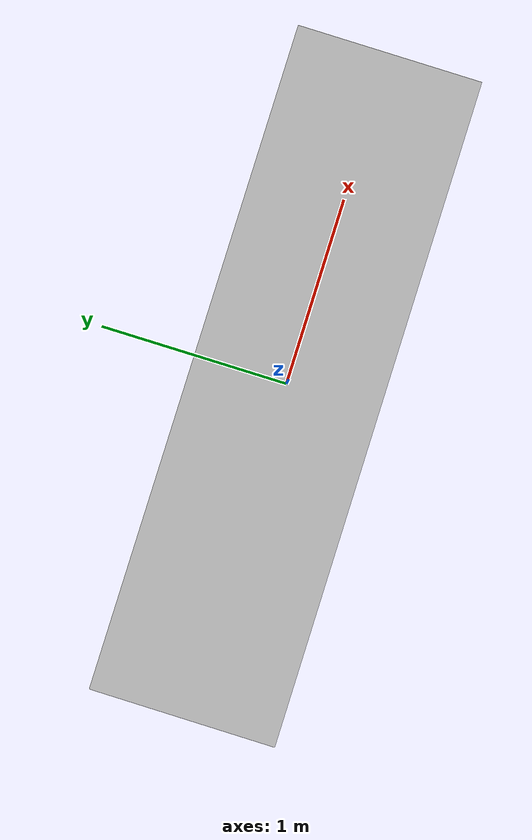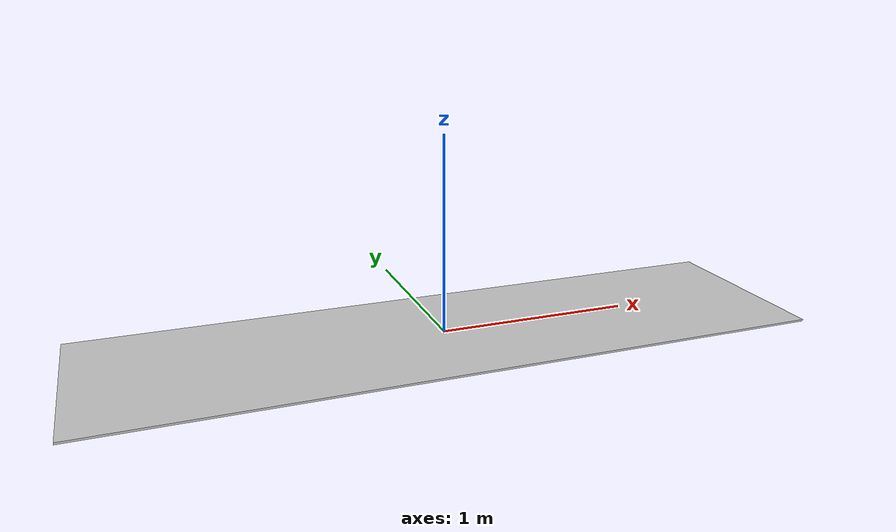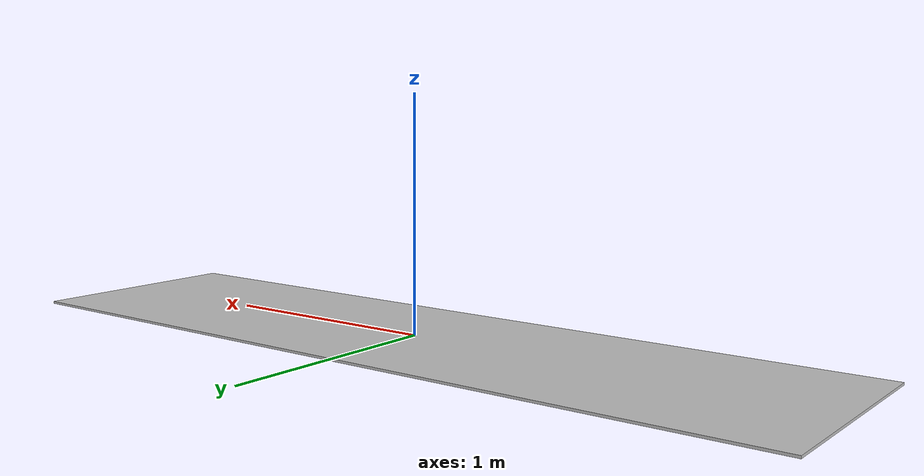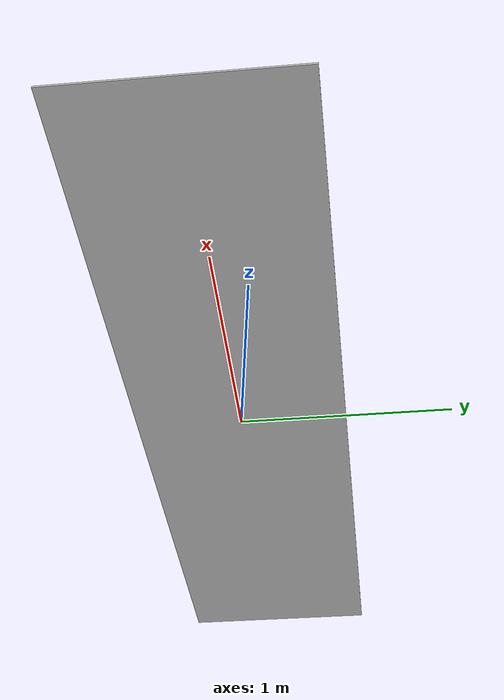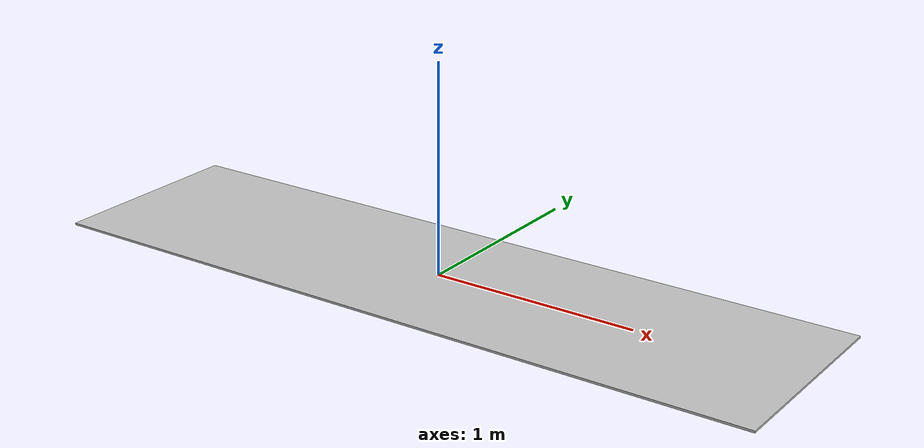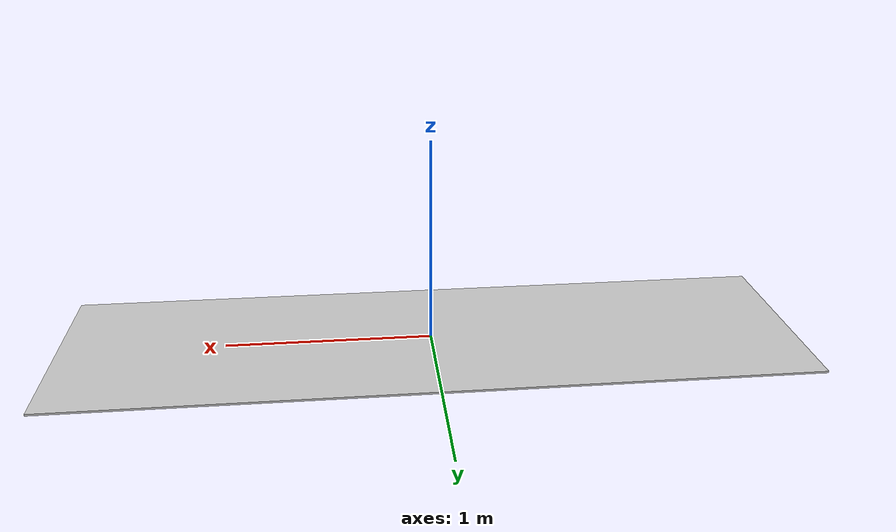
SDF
<?xml version='1.0'?>
<sdf version='1.7'>
  <model name='ground_plane'>
    <link name='base_link'>
      <inertial>
        <mass>1</mass>
        <inertia>
          <ixx>0.166667</ixx>
          <ixy>0</ixy>
          <ixz>0</ixz>
          <iyy>0.166667</iyy>
          <iyz>0</iyz>
          <izz>0.166667</izz>
        </inertia>
        <pose>0 0 0 0 -0 0</pose>
      </inertial>
      <pose>0 0 0 0 -0 0</pose>
      <visual name='visual'>
        <pose>0 0 -0.005 0 -0 0</pose>
        <geometry>
            <box>
                <size>3.6 1 0.01</size>
            </box>
        </geometry>
        <material>
          <diffuse>0.76 0.76 0.76 1</diffuse>
        </material>
      </visual>
    </link>
  </model>
</sdf>
